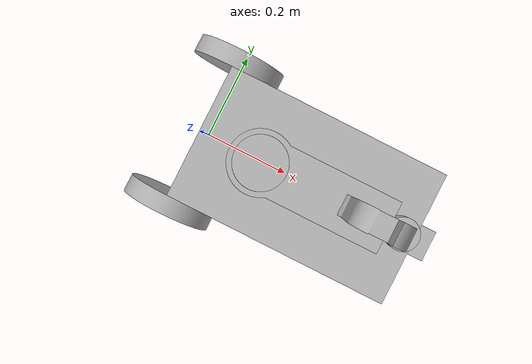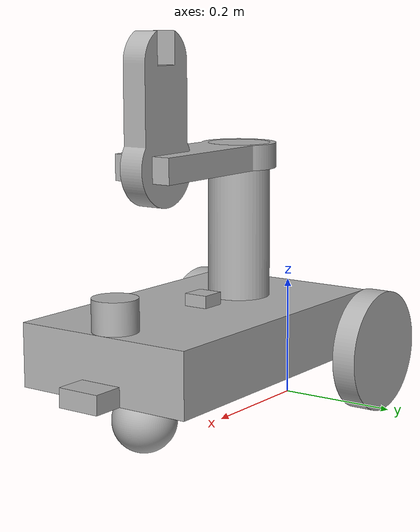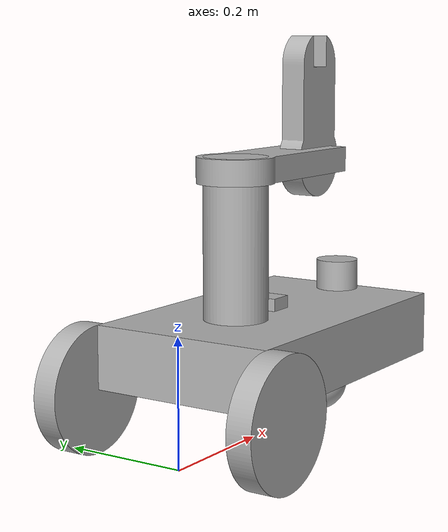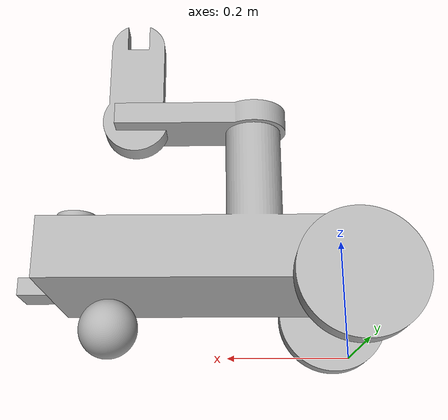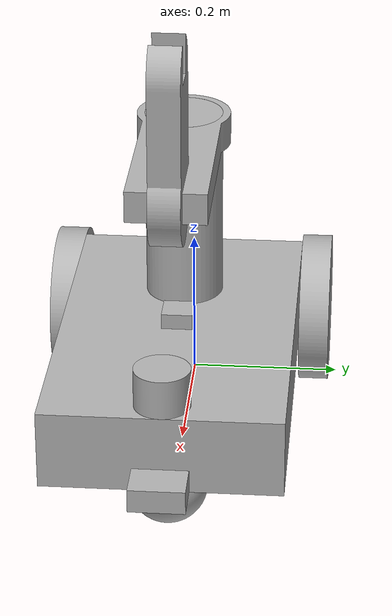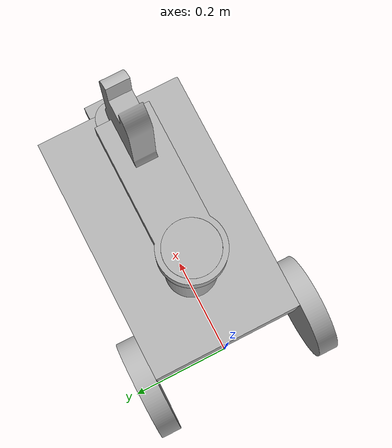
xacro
<?xml version="1.0" ?>
<robot name="ros2_gk" xmlns:xacro="http://www.ros.org/wiki/xacro">

<xacro:include filename="$(find ros2_gk_description)/urdf/materials.xacro" />
<xacro:include filename="$(find ros2_gk_description)/urdf/ros2_gk.trans" />
<xacro:include filename="$(find ros2_gk_description)/urdf/ros2_gk.gazebo" />

<link name="base_footprint"/>

<joint name="base_joint" type="fixed">
  <parent link="base_footprint"/>
  <child link="base_link"/>
  <origin xyz="0 0 0" rpy="0 0 0"/>
</joint>

<link name="base_link">
  <inertial>
    <origin xyz="0.25 0 0" rpy="0 0 0"/>
    <mass value="5.0"/>
    <inertia ixx="0.05" iyy="0.05" izz="0.05" ixy="0.0" iyz="0.0" ixz="0.0"/>
  </inertial>
  <visual>
    <origin xyz="0 0 0" rpy="0 0 0"/>
    <geometry>
      <mesh filename="package://ros2_gk_description/meshes/base_link.stl" scale="0.001 0.001 0.001"/>
    </geometry>
    <material name="silver"/>
  </visual>
  </link>

<link name="right_wheel_link_1">
  <inertial>
    <origin xyz="-0.0 0.15 -0.1" rpy="0 0 0"/>
    <mass value="0.5"/>
    <inertia ixx="0.001" iyy="0.001" izz="0.001" ixy="0.0" iyz="0.0" ixz="0.0"/>
  </inertial>
  <visual>
    <origin xyz="-0.0 0.15 -0.1" rpy="0 0 0"/>
    <geometry>
      <mesh filename="package://ros2_gk_description/meshes/right_wheel_link_1.stl" scale="0.001 0.001 0.001"/>
    </geometry>
    <material name="silver"/>
  </visual>
  <collision>
    <origin xyz="0 0 0" rpy="1.570796 0 0"/>
    <geometry>
      <cylinder radius="0.1" length="0.04"/>
    </geometry>
  </collision>
</link>

<link name="left_wheel_link_1">
  <inertial>
    <origin xyz="0.0 -0.15 -0.1" rpy="0 0 0"/>
    <mass value="0.5"/>
    <inertia ixx="0.001" iyy="0.001" izz="0.001" ixy="0.0" iyz="0.0" ixz="0.0"/>
  </inertial>
  <visual>
    <origin xyz="0.0 -0.15 -0.1" rpy="0 0 0"/>
    <geometry>
      <mesh filename="package://ros2_gk_description/meshes/left_wheel_link_1.stl" scale="0.001 0.001 0.001"/>
    </geometry>
    <material name="silver"/>
  </visual>
  <collision>
    <origin xyz="0 0 0" rpy="1.570796 0 0"/>
    <geometry>
      <cylinder radius="0.1" length="0.04"/>
    </geometry>
  </collision>
</link>

<link name="arm_1_link_1">
  <inertial>
    <origin xyz="-0.15 -0.0 -0.45" rpy="0 0 0"/>
    <mass value="0.5"/>
    <inertia ixx="0.002" iyy="0.002" izz="0.002" ixy="0.0" iyz="0.0" ixz="0.0"/>
  </inertial>
  <visual>
    <origin xyz="-0.15 -0.0 -0.45" rpy="0 0 0"/>
    <geometry>
      <mesh filename="package://ros2_gk_description/meshes/arm_1_link_1.stl" scale="0.001 0.001 0.001"/>
    </geometry>
    <material name="silver"/>
  </visual>
</link>

<link name="arm_2_link_1">
  <inertial>
    <origin xyz="-0.364996 0.001273 -0.43" rpy="0 0 0"/>
    <mass value="0.3"/>
    <inertia ixx="0.001" iyy="0.001" izz="0.001" ixy="0.0" iyz="0.0" ixz="0.0"/>
  </inertial>
  <visual>
    <origin xyz="-0.364996 0.001273 -0.43" rpy="0 0 0"/>
    <geometry>
      <mesh filename="package://ros2_gk_description/meshes/arm_2_link_1.stl" scale="0.001 0.001 0.001"/>
    </geometry>
    <material name="silver"/>
  </visual>
</link>

<link name="camera_link_1">
  <inertial>
    <origin xyz="-0.5 -0.0 -0.1" rpy="0 0 0"/>
    <mass value="0.05"/>
    <inertia ixx="0.0001" iyy="0.0001" izz="0.0001" ixy="0.0" iyz="0.0" ixz="0.0"/>
  </inertial>
  <visual>
    <origin xyz="-0.5 -0.0 -0.1" rpy="0 0 0"/>
    <geometry>
      <mesh filename="package://ros2_gk_description/meshes/camera_link_1.stl" scale="0.001 0.001 0.001"/>
    </geometry>
    <material name="silver"/>
  </visual>
</link>

<link name="lidar_link_1">
  <inertial>
    <origin xyz="-0.465 -0 -0.2" rpy="0 0 0"/>
    <mass value="0.1"/>
    <inertia ixx="0.0001" iyy="0.0001" izz="0.0001" ixy="0.0" iyz="0.0" ixz="0.0"/>
  </inertial>
  <visual>
    <origin xyz="-0.465 -0 -0.2" rpy="0 0 0"/>
    <geometry>
      <mesh filename="package://ros2_gk_description/meshes/lidar_link_1.stl" scale="0.001 0.001 0.001"/>
    </geometry>
    <material name="silver"/>
  </visual>
</link>

<link name="gps_link_1">
  <inertial>
    <origin xyz="-0.25 -0.0 -0.2" rpy="0 0 0"/>
    <mass value="0.02"/>
    <inertia ixx="0.00001" iyy="0.00001" izz="0.00001" ixy="0.0" iyz="0.0" ixz="0.0"/>
  </inertial>
  <visual>
    <origin xyz="-0.25 -0.0 -0.2" rpy="0 0 0"/>
    <geometry>
      <mesh filename="package://ros2_gk_description/meshes/gps_link_1.stl" scale="0.001 0.001 0.001"/>
    </geometry>
    <material name="silver"/>
  </visual>
</link>

<link name="caster_wheel_link_1">
  <inertial>
    <origin xyz="-0.4 -0 -0.05" rpy="0 0 0"/>
    <mass value="0.2"/>
    <inertia ixx="0.0005" iyy="0.0005" izz="0.0005" ixy="0.0" iyz="0.0" ixz="0.0"/>
  </inertial>
  <visual>
    <origin xyz="-0.4 -0 -0.05" rpy="0 0 0"/>
    <geometry>
      <mesh filename="package://ros2_gk_description/meshes/caster_wheel_link_1.stl" scale="0.001 0.001 0.001"/>
    </geometry>
    <material name="silver"/>
  </visual>
  <collision>
    <origin xyz="0 0 0" rpy="0 0 0"/>
    <geometry>
      <sphere radius="0.05"/>
    </geometry>
  </collision>
</link>

<joint name="right_wheel_joint" type="continuous">
  <origin xyz="0.0 -0.15 0.1" rpy="0 0 0"/>
  <parent link="base_link"/>
  <child link="right_wheel_link_1"/>
  <axis xyz="0.0 1.0 0.0"/>
  <dynamics damping="0.2" friction="0.2"/>
</joint>

<joint name="left_wheel_joint" type="continuous">
  <origin xyz="0.0 0.15 0.1" rpy="0 0 0"/>
  <parent link="base_link"/>
  <child link="left_wheel_link_1"/>
  <axis xyz="0.0 1.0 0.0"/>
  <dynamics damping="0.2" friction="0.2"/>
</joint>

<joint name="arm_1_joint" type="revolute">
  <origin xyz="0.15 0.0 0.45" rpy="0 0 0"/>
  <parent link="base_link"/>
  <child link="arm_1_link_1"/>
  <axis xyz="0.0 0.0 1.0"/>
  <limit upper="1.570796" lower="-1.570796" effort="100" velocity="100"/>
  <dynamics damping="0.5" friction="0.5"/>
</joint>

<joint name="arm_2_joint" type="revolute">
  <origin xyz="0.214996 -0.001273 -0.02" rpy="0 0 0"/>
  <parent link="arm_1_link_1"/>
  <child link="arm_2_link_1"/>
  <axis xyz="0.0 -1.0 0.0"/>
  <limit upper="0" lower="-2.416195" effort="100" velocity="100"/>
  <dynamics damping="0.5" friction="0.5"/>
</joint>

<joint name="camera_joint" type="fixed">
  <origin xyz="0.5 0.0 0.1" rpy="0 0 0"/>
  <parent link="base_link"/>
  <child link="camera_link_1"/>
</joint>

<joint name="lidar_joint" type="fixed">
  <origin xyz="0.465 0 0.2" rpy="0 0 0"/>
  <parent link="base_link"/>
  <child link="lidar_link_1"/>
</joint>

<joint name="gps_joint" type="fixed">
  <origin xyz="0.25 0.0 0.2" rpy="0 0 0"/>
  <parent link="base_link"/>
  <child link="gps_link_1"/>
</joint>

<joint name="caster_wheel_joint" type="fixed">
  <origin xyz="0.4 0 0.05" rpy="0 0 0"/>
  <parent link="base_link"/>
  <child link="caster_wheel_link_1"/>
</joint>

<gazebo reference="lidar_joint">
  <preserveFixedJoint>true</preserveFixedJoint>
</gazebo>
<gazebo reference="camera_joint">
  <preserveFixedJoint>true</preserveFixedJoint>
</gazebo>
<gazebo reference="gps_joint">
  <preserveFixedJoint>true</preserveFixedJoint>
</gazebo>
<gazebo reference="caster_wheel_joint">
  <preserveFixedJoint>true</preserveFixedJoint>
</gazebo>

<gazebo reference="right_wheel_link_1">
  <mu1>200.0</mu1>
  <mu2>100.0</mu2>
  <kp>10000000.0</kp>
  <kd>1.0</kd>
</gazebo>

<gazebo reference="left_wheel_link_1">
  <mu1>200.0</mu1>
  <mu2>100.0</mu2>
  <kp>10000000.0</kp>
  <kd>1.0</kd>
</gazebo>

<gazebo reference="caster_wheel_link_1">
  <mu1>0.0</mu1>
  <mu2>0.0</mu2>
  <kp>10000000.0</kp>
  <kd>1.0</kd>
</gazebo>

<gazebo>
  <plugin name="diff_drive_controller" filename="libgazebo_ros_diff_drive.so">
    <update_rate>50</update_rate>
    <left_joint>left_wheel_joint</left_joint>
    <right_joint>right_wheel_joint</right_joint>
    <wheel_separation>0.34</wheel_separation>
    <wheel_diameter>0.2</wheel_diameter>
    <max_wheel_torque>20</max_wheel_torque>
    <max_wheel_acceleration>1.0</max_wheel_acceleration>
    <command_topic>cmd_vel</command_topic>
    <odometry_topic>odom</odometry_topic>
    <odometry_frame>odom</odometry_frame>
    <robot_base_frame>base_footprint</robot_base_frame>
    <publish_odom>true</publish_odom>
    <publish_odom_tf>true</publish_odom_tf>
    <publish_wheel_tf>true</publish_wheel_tf>
  </plugin>
</gazebo>

<ros2_control name="GazeboSystem" type="system">
  <hardware>
    <plugin>gazebo_ros2_control/GazeboSystem</plugin>
  </hardware>
  <joint name="arm_1_joint">
    <command_interface name="position"/>
    <state_interface name="position"/>
  </joint>
  <joint name="arm_2_joint">
    <command_interface name="position"/>
    <state_interface name="position"/>
  </joint>
</ros2_control>

<gazebo>
  <plugin name="gazebo_ros2_control" filename="libgazebo_ros2_control.so">
    <parameters>$(find ros2_gk_description)/config/arm_controllers.yaml</parameters>
  </plugin>
</gazebo>

<gazebo reference="lidar_link_1">
  <sensor name="lidar" type="ray">
    <always_on>true</always_on>
    <visualize>true</visualize> <update_rate>10</update_rate> <ray>
      <scan>
        <horizontal>
          <samples>360</samples> <resolution>1.0</resolution>
          <min_angle>-3.14159</min_angle> <max_angle>3.14159</max_angle>  </horizontal>
      </scan>
      <range>
        <min>0.15</min> <max>10.0</max> <resolution>0.015</resolution>
      </range>
    </ray>
    <plugin name="scan" filename="libgazebo_ros_ray_sensor.so">
      <ros>
        <remapping>~/out:=scan</remapping> </ros>
      <output_type>sensor_msgs/LaserScan</output_type>
      <frame_name>lidar_link_1</frame_name>
    </plugin>
  </sensor>
</gazebo>

<gazebo reference="camera_link_1">
  <sensor name="camera" type="camera">
    <always_on>true</always_on>
    <visualize>true</visualize> <update_rate>30</update_rate> <camera>
      <horizontal_fov>1.089</horizontal_fov> <image>
        <format>R8G8B8</format> <width>640</width>      <height>480</height>    </image>
      <clip>
        <near>0.05</near>
        <far>8.0</far>
      </clip>
    </camera>
    <plugin name="camera_controller" filename="libgazebo_ros_camera.so">
      <frame_name>camera_link_1</frame_name>
    </plugin>
  </sensor>
</gazebo>

<gazebo reference="gps_link_1">
  <sensor name="gps_sensor" type="gps">
    <always_on>true</always_on>
    <update_rate>1.0</update_rate> <plugin name="gps_controller" filename="libgazebo_ros_gps_sensor.so">
      <ros>
        <remapping>~/out:=gps/fix</remapping> </ros>
      <frame_name>gps_link_1</frame_name>
    </plugin>
  </sensor>
</gazebo>

</robot>

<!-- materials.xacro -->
<robot name="ros2_gk" xmlns:xacro="http://www.ros.org/wiki/xacro" >

<material name="silver">
  <color rgba="0.700 0.700 0.700 1.000"/>
</material>

</robot>

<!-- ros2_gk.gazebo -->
<robot name="ros2_gk" xmlns:xacro="http://www.ros.org/wiki/xacro" >

<xacro:property name="body_color" value="Gazebo/Silver" />

<gazebo>
  <plugin name="control" filename="libgazebo_ros_control.so"/>
</gazebo>
<gazebo reference="base_link">
  <material>${body_color}</material>
  <mu1>0.2</mu1>
  <mu2>0.2</mu2>
  <selfCollide>true</selfCollide>
  <gravity>true</gravity>
</gazebo>

<gazebo reference="right_wheel_link_1">
  <material>${body_color}</material>
  <mu1>0.2</mu1>
  <mu2>0.2</mu2>
  <selfCollide>true</selfCollide>
</gazebo>

<gazebo reference="left_wheel_link_1">
  <material>${body_color}</material>
  <mu1>0.2</mu1>
  <mu2>0.2</mu2>
  <selfCollide>true</selfCollide>
</gazebo>

<gazebo reference="arm_1_link_1">
  <material>${body_color}</material>
  <mu1>0.2</mu1>
  <mu2>0.2</mu2>
  <selfCollide>true</selfCollide>
</gazebo>

<gazebo reference="arm_2_link_1">
  <material>${body_color}</material>
  <mu1>0.2</mu1>
  <mu2>0.2</mu2>
  <selfCollide>true</selfCollide>
</gazebo>

<gazebo reference="camera_link_1">
  <material>${body_color}</material>
  <mu1>0.2</mu1>
  <mu2>0.2</mu2>
  <selfCollide>true</selfCollide>
</gazebo>

<gazebo reference="lidar_link_1">
  <material>${body_color}</material>
  <mu1>0.2</mu1>
  <mu2>0.2</mu2>
  <selfCollide>true</selfCollide>
</gazebo>

<gazebo reference="gps_link_1">
  <material>${body_color}</material>
  <mu1>0.2</mu1>
  <mu2>0.2</mu2>
  <selfCollide>true</selfCollide>
</gazebo>

<gazebo reference="caster_wheel_link_1">
  <material>${body_color}</material>
  <mu1>0.2</mu1>
  <mu2>0.2</mu2>
  <selfCollide>true</selfCollide>
</gazebo>

</robot>
